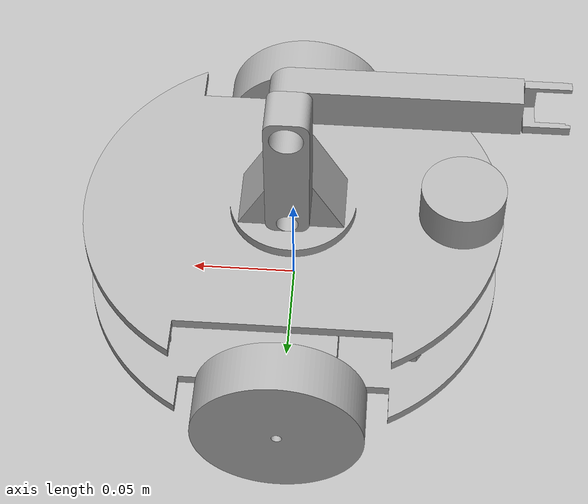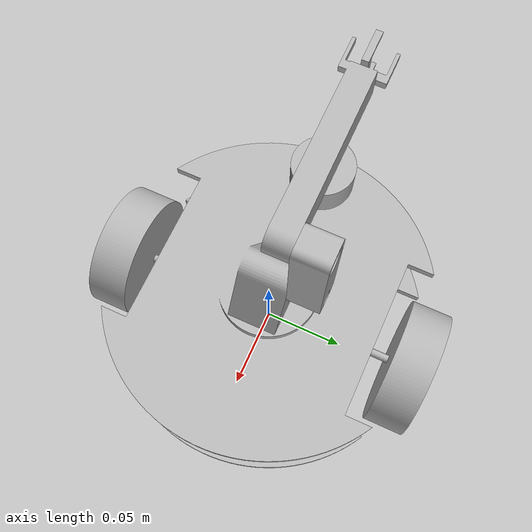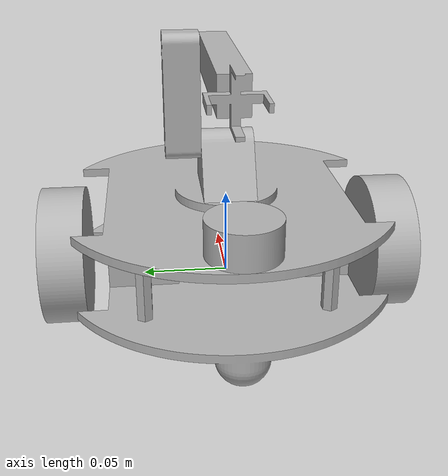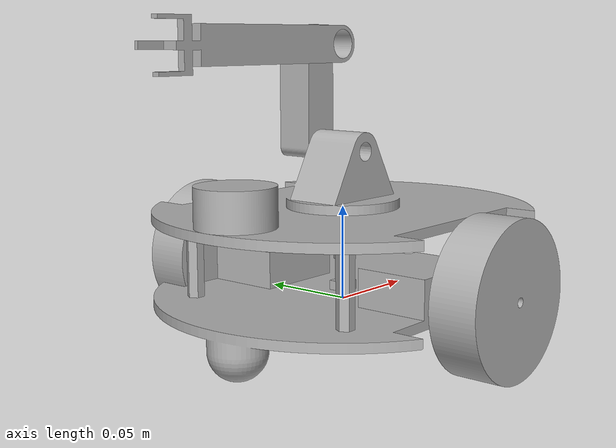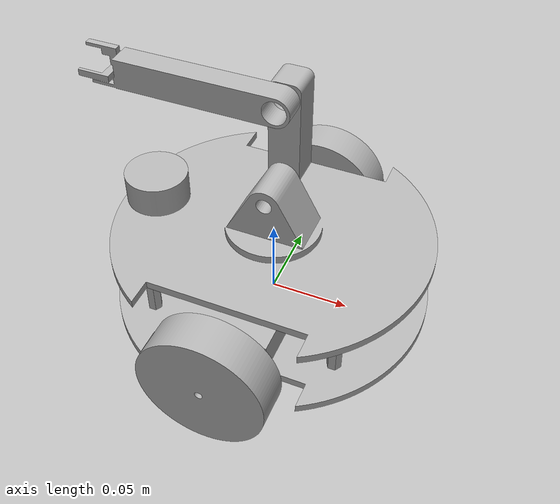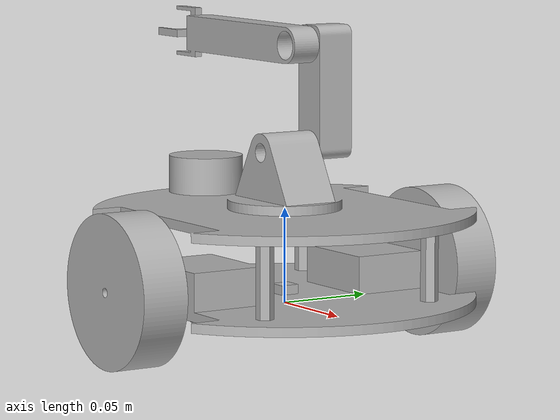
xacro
<?xml version="1.0" ?>
<robot name="robot_ros" xmlns:xacro="http://www.ros.org/wiki/xacro">

<xacro:include filename="$(find robot_ros_description)/urdf/materials.xacro" />
<xacro:include filename="$(find robot_ros_description)/urdf/robot_ros.gazebo" />

<link name="base_footprint"/>
<joint name="base_footprint_joint" type="fixed">
  <origin xyz="0 0 0" rpy="1.570796 0 -1.570796"/>
  <parent link="base_footprint"/>
  <child link="base_link"/>
</joint>

<link name="front_caster">
  <collision>
    <origin xyz="0 0.015 -0.08" rpy="0 0 0"/>
    <geometry>
      <sphere radius="0.015"/>
    </geometry>
  </collision>
  <inertial>
    <mass value="0.01"/>
    <inertia ixx="1e-6" iyy="1e-6" izz="1e-6" ixy="0" ixz="0" iyz="0"/>
  </inertial>
</link>
<joint name="front_caster_joint" type="fixed">
  <parent link="base_link"/>
  <child link="front_caster"/>
  <origin xyz="0 0 0" rpy="0 0 0"/>
</joint>

<link name="back_caster">
  <collision>
    <origin xyz="0 0.015 0.08" rpy="0 0 0"/>
    <geometry>
      <sphere radius="0.015"/>
    </geometry>
  </collision>
  <inertial>
    <mass value="0.01"/>
    <inertia ixx="1e-6" iyy="1e-6" izz="1e-6" ixy="0" ixz="0" iyz="0"/>
  </inertial>
</link>
<joint name="back_caster_joint" type="fixed">
  <parent link="base_link"/>
  <child link="back_caster"/>
  <origin xyz="0 0 0" rpy="0 0 0"/>
</joint>

<link name="base_link">
  <inertial>
    <origin xyz="1.222897793824503e-13 0.006168883797667544 0.00499243549811198" rpy="0 0 0"/>
    <mass value="0.26912643069609726"/>
    <inertia ixx="0.000584" iyy="0.001079" izz="0.000531" ixy="0.0" iyz="2.2e-05" ixz="-0.0"/>
  </inertial>
  <visual>
    <origin xyz="0 0 0" rpy="0 0 0"/>
    <geometry>
      <mesh filename="package://robot_ros_description/meshes/base_link.stl" scale="0.001 0.001 0.001"/>
    </geometry>
    <material name="silver"/>
  </visual>
  <collision>
    <origin xyz="0 0 0" rpy="0 0 0"/>
    <geometry>
      <mesh filename="package://robot_ros_description/meshes/base_link.stl" scale="0.001 0.001 0.001"/>
    </geometry>
  </collision>
</link>

<link name="stanoff__2__1">
  <inertial>
    <origin xyz="-0.05 0.019999999999999976 0.059999999999999984" rpy="0 0 0"/>
    <mass value="0.018822542536012524"/>
    <inertia ixx="3e-06" iyy="0.0" izz="3e-06" ixy="0.0" iyz="0.0" ixz="0.0"/>
  </inertial>
  <visual>
    <origin xyz="-0.0 -0.005 -0.0" rpy="0 0 0"/>
    <geometry>
      <mesh filename="package://robot_ros_description/meshes/stanoff__2__1.stl" scale="0.001 0.001 0.001"/>
    </geometry>
    <material name="silver"/>
  </visual>
  <collision>
    <origin xyz="-0.0 -0.005 -0.0" rpy="0 0 0"/>
    <geometry>
      <mesh filename="package://robot_ros_description/meshes/stanoff__2__1.stl" scale="0.001 0.001 0.001"/>
    </geometry>
  </collision>
</link>

<link name="stanoff__1___1__1">
  <inertial>
    <origin xyz="0.049999999999999885 0.01999999999999997 0.05999999999999989" rpy="0 0 0"/>
    <mass value="0.018822542536012527"/>
    <inertia ixx="3e-06" iyy="0.0" izz="3e-06" ixy="0.0" iyz="-0.0" ixz="-0.0"/>
  </inertial>
  <visual>
    <origin xyz="-0.0 -0.005 -0.0" rpy="0 0 0"/>
    <geometry>
      <mesh filename="package://robot_ros_description/meshes/stanoff__1___1__1.stl" scale="0.001 0.001 0.001"/>
    </geometry>
    <material name="silver"/>
  </visual>
  <collision>
    <origin xyz="-0.0 -0.005 -0.0" rpy="0 0 0"/>
    <geometry>
      <mesh filename="package://robot_ros_description/meshes/stanoff__1___1__1.stl" scale="0.001 0.001 0.001"/>
    </geometry>
  </collision>
</link>

<link name="stanoff__1__1">
  <inertial>
    <origin xyz="0.04999999999999991 0.019999999999999973 -0.0599999999999999" rpy="0 0 0"/>
    <mass value="0.018822542536012527"/>
    <inertia ixx="3e-06" iyy="0.0" izz="3e-06" ixy="0.0" iyz="0.0" ixz="-0.0"/>
  </inertial>
  <visual>
    <origin xyz="-0.0 -0.005 -0.0" rpy="0 0 0"/>
    <geometry>
      <mesh filename="package://robot_ros_description/meshes/stanoff__1__1.stl" scale="0.001 0.001 0.001"/>
    </geometry>
    <material name="silver"/>
  </visual>
  <collision>
    <origin xyz="-0.0 -0.005 -0.0" rpy="0 0 0"/>
    <geometry>
      <mesh filename="package://robot_ros_description/meshes/stanoff__1__1.stl" scale="0.001 0.001 0.001"/>
    </geometry>
  </collision>
</link>

<link name="stanoff_1">
  <inertial>
    <origin xyz="-0.050000000000000024 0.01999999999999999 -0.05999999999999999" rpy="0 0 0"/>
    <mass value="0.018822542536012524"/>
    <inertia ixx="3e-06" iyy="0.0" izz="3e-06" ixy="-0.0" iyz="0.0" ixz="0.0"/>
  </inertial>
  <visual>
    <origin xyz="-0.0 -0.005 -0.0" rpy="0 0 0"/>
    <geometry>
      <mesh filename="package://robot_ros_description/meshes/stanoff_1.stl" scale="0.001 0.001 0.001"/>
    </geometry>
    <material name="silver"/>
  </visual>
  <collision>
    <origin xyz="-0.0 -0.005 -0.0" rpy="0 0 0"/>
    <geometry>
      <mesh filename="package://robot_ros_description/meshes/stanoff_1.stl" scale="0.001 0.001 0.001"/>
    </geometry>
  </collision>
</link>

<link name="imu_1">
  <inertial>
    <origin xyz="4.0731306703083454e-17 0.002500000000000023 3.885780478654568e-18" rpy="0 0 0"/>
    <mass value="0.003925000058487058"/>
    <inertia ixx="0.0" iyy="0.0" izz="0.0" ixy="0.0" iyz="0.0" ixz="0.0"/>
  </inertial>
  <visual>
    <origin xyz="-0.0 -0.005 -0.0" rpy="0 0 0"/>
    <geometry>
      <mesh filename="package://robot_ros_description/meshes/imu_1.stl" scale="0.001 0.001 0.001"/>
    </geometry>
    <material name="silver"/>
  </visual>
  <collision>
    <origin xyz="-0.0 -0.005 -0.0" rpy="0 0 0"/>
    <geometry>
      <mesh filename="package://robot_ros_description/meshes/imu_1.stl" scale="0.001 0.001 0.001"/>
    </geometry>
  </collision>
</link>

<link name="top_plate_1">
  <inertial>
    <origin xyz="-0.049999999999746435 0.0063505967675932945 -0.055000000000006266" rpy="0 0 0"/>
    <mass value="0.20830322680546173"/>
    <inertia ixx="0.000468" iyy="0.000713" izz="0.000276" ixy="0.0" iyz="0.0" ixz="0.0"/>
  </inertial>
  <visual>
    <origin xyz="-0.05 -0.045 -0.055" rpy="0 0 0"/>
    <geometry>
      <mesh filename="package://robot_ros_description/meshes/top_plate_1.stl" scale="0.001 0.001 0.001"/>
    </geometry>
    <material name="silver"/>
  </visual>
  <collision>
    <origin xyz="-0.05 -0.045 -0.055" rpy="0 0 0"/>
    <geometry>
      <mesh filename="package://robot_ros_description/meshes/top_plate_1.stl" scale="0.001 0.001 0.001"/>
    </geometry>
  </collision>
</link>

<link name="wheel_1">
  <inertial>
    <origin xyz="0.012500000000000053 6.938893903907228e-18 1.017332399410385e-15" rpy="0 0 0"/>
    <mass value="0.11641073403106551"/>
    <inertia ixx="9.3e-05" iyy="5.3e-05" izz="5.3e-05" ixy="-0.0" iyz="-0.0" ixz="-0.0"/>
  </inertial>
  <visual>
    <origin xyz="-0.0825 -0.015 -0.0" rpy="0 0 0"/>
    <geometry>
      <mesh filename="package://robot_ros_description/meshes/wheel_1.stl" scale="0.001 0.001 0.001"/>
    </geometry>
    <material name="silver"/>
  </visual>
  <collision>
    <origin xyz="-0.0825 -0.015 -0.0" rpy="0 0 0"/>
    <geometry>
      <mesh filename="package://robot_ros_description/meshes/wheel_1.stl" scale="0.001 0.001 0.001"/>
    </geometry>
  </collision>
</link>

<link name="wheel_2">
  <inertial>
    <origin xyz="-0.012499999999999942 7.37257477290143e-16 9.942651306563859e-16" rpy="0 0 0"/>
    <mass value="0.11641073403106551"/>
    <inertia ixx="9.3e-05" iyy="5.3e-05" izz="5.3e-05" ixy="-0.0" iyz="-0.0" ixz="-0.0"/>
  </inertial>
  <visual>
    <origin xyz="0.0825 -0.015 -0.0" rpy="0 0 0"/>
    <geometry>
      <mesh filename="package://robot_ros_description/meshes/wheel_2.stl" scale="0.001 0.001 0.001"/>
    </geometry>
    <material name="silver"/>
  </visual>
  <collision>
    <origin xyz="0.0825 -0.015 -0.0" rpy="0 0 0"/>
    <geometry>
      <mesh filename="package://robot_ros_description/meshes/wheel_2.stl" scale="0.001 0.001 0.001"/>
    </geometry>
  </collision>
</link>

<link name="lidar_1">
  <inertial>
    <origin xyz="-1.358175429145496e-17 0.009999999999999926 0.08" rpy="0 0 0"/>
    <mass value="0.197292018645439"/>
    <inertia ixx="2.6e-05" iyy="3.9e-05" izz="2.6e-05" ixy="0.0" iyz="-0.0" ixz="-0.0"/>
  </inertial>
  <visual>
    <origin xyz="0.0 -0.05 -0.0" rpy="0 0 0"/>
    <geometry>
      <mesh filename="package://robot_ros_description/meshes/lidar_1.stl" scale="0.001 0.001 0.001"/>
    </geometry>
    <material name="silver"/>
  </visual>
  <collision>
    <origin xyz="0.0 -0.05 -0.0" rpy="0 0 0"/>
    <geometry>
      <mesh filename="package://robot_ros_description/meshes/lidar_1.stl" scale="0.001 0.001 0.001"/>
    </geometry>
  </collision>
</link>

<link name="link_arm_1_1">
  <inertial>
    <origin xyz="-0.010000000000000123 0.028162063620211078 -0.00037849755266013656" rpy="0 0 0"/>
    <mass value="0.1"/>
    <inertia ixx="0.001" iyy="0.001" izz="0.001" ixy="0.0" iyz="0.0" ixz="0.0"/>
  </inertial>
  <visual>
    <origin xyz="0.015 -0.08 -0.0" rpy="0 0 0"/>
    <geometry>
      <mesh filename="package://robot_ros_description/meshes/link_arm_1_1.stl" scale="0.001 0.001 0.001"/>
    </geometry>
    <material name="silver"/>
  </visual>
  <collision>
    <origin xyz="0.015 -0.08 -0.0" rpy="0 0 0"/>
    <geometry>
      <mesh filename="package://robot_ros_description/meshes/link_arm_1_1.stl" scale="0.001 0.001 0.001"/>
    </geometry>
  </collision>
</link>

<link name="link_arm_2_1">
  <inertial>
    <origin xyz="0.007499999999999892 0.021326500168701412 0.04895600422661237" rpy="0 0 0"/>
    <mass value="0.1"/>
    <inertia ixx="0.001" iyy="0.001" izz="0.001" ixy="0.0" iyz="0.0" ixz="0.0"/>
  </inertial>
  <visual>
    <origin xyz="0.015 -0.134995 0.000739" rpy="0 0 0"/>
    <geometry>
      <mesh filename="package://robot_ros_description/meshes/link_arm_2_1.stl" scale="0.001 0.001 0.001"/>
    </geometry>
    <material name="silver"/>
  </visual>
  <collision>
    <origin xyz="0.015 -0.134995 0.000739" rpy="0 0 0"/>
    <geometry>
      <mesh filename="package://robot_ros_description/meshes/link_arm_2_1.stl" scale="0.001 0.001 0.001"/>
    </geometry>
  </collision>
</link>

<joint name="Rigid 1" type="fixed">
  <origin xyz="0.0 0.005 0.0" rpy="0 0 0"/>
  <parent link="base_link"/>
  <child link="stanoff__2__1"/>
</joint>

<joint name="Rigid 2" type="fixed">
  <origin xyz="0.0 0.005 0.0" rpy="0 0 0"/>
  <parent link="base_link"/>
  <child link="stanoff__1___1__1"/>
</joint>

<joint name="Rigid 3" type="fixed">
  <origin xyz="0.0 0.005 0.0" rpy="0 0 0"/>
  <parent link="base_link"/>
  <child link="stanoff__1__1"/>
</joint>

<joint name="Rigid 4" type="fixed">
  <origin xyz="0.0 0.005 0.0" rpy="0 0 0"/>
  <parent link="base_link"/>
  <child link="stanoff_1"/>
</joint>

<joint name="Rigid 5" type="fixed">
  <origin xyz="0.0 0.005 0.0" rpy="0 0 0"/>
  <parent link="base_link"/>
  <child link="imu_1"/>
</joint>

<joint name="Rigid 6" type="fixed">
  <origin xyz="0.05 0.04 0.055" rpy="0 0 0"/>
  <parent link="stanoff__1___1__1"/>
  <child link="top_plate_1"/>
</joint>

<joint name="Revolute 7" type="continuous">
  <origin xyz="0.0825 0.015 0.0" rpy="0 0 0"/>
  <parent link="base_link"/>
  <child link="wheel_1"/>
  <axis xyz="-1.0 0.0 0.0"/>
</joint>

<joint name="Revolute 8" type="continuous">
  <origin xyz="-0.0825 0.015 0.0" rpy="0 0 0"/>
  <parent link="base_link"/>
  <child link="wheel_2"/>
  <axis xyz="-1.0 0.0 0.0"/>
</joint>

<joint name="Rigid 9" type="fixed">
  <origin xyz="-0.05 0.005 -0.055" rpy="0 0 0"/>
  <parent link="top_plate_1"/>
  <child link="lidar_1"/>
</joint>

<joint name="Revolute 10" type="revolute">
  <origin xyz="-0.065 0.035 -0.055" rpy="0 0 0"/>
  <parent link="top_plate_1"/>
  <child link="link_arm_1_1"/>
  <axis xyz="1.0 0.0 0.0"/>
  <limit upper="1.570796" lower="-1.570796" effort="100" velocity="100"/>
  <dynamics damping="1.0" friction="0.5"/>
</joint>

<joint name="Revolute 11" type="revolute">
  <origin xyz="0.0 0.054995 -0.000739" rpy="0 0 0"/>
  <parent link="link_arm_1_1"/>
  <child link="link_arm_2_1"/>
  <axis xyz="-1.0 -0.0 0.0"/>
  <limit upper="3.141593" lower="0.0" effort="100" velocity="100"/>
  <dynamics damping="1.0" friction="0.5"/>
</joint>

<link name="lidar_frame"/>
<joint name="lidar_frame_joint" type="fixed">
  <origin xyz="0 0 0" rpy="-1.570796 1.570796 0"/>
  <parent link="lidar_1"/>
  <child link="lidar_frame"/>
</joint>

<link name="imu_frame"/>
<joint name="imu_frame_joint" type="fixed">
  <origin xyz="0 0 0" rpy="-1.570796 1.570796 0"/>
  <parent link="imu_1"/>
  <child link="imu_frame"/>
</joint>

</robot>

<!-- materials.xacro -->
<robot name="robot_ros" xmlns:xacro="http://www.ros.org/wiki/xacro" >

<material name="silver">
  <color rgba="0.700 0.700 0.700 1.000"/>
</material>

</robot>

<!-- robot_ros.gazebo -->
<robot name="robot_ros" xmlns:xacro="http://www.ros.org/wiki/xacro" >

<xacro:property name="body_color" value="Gazebo/Silver" />

<gazebo>
  <plugin name="diff_drive" filename="libgazebo_ros_diff_drive.so">
    <update_rate>30</update_rate>
    <left_joint>Revolute 8</left_joint>
    <right_joint>Revolute 7</right_joint>
    <wheel_separation>0.165</wheel_separation>
    <wheel_diameter>0.03</wheel_diameter>
    <max_wheel_torque>20</max_wheel_torque>
    <max_wheel_acceleration>1.0</max_wheel_acceleration>
    <command_topic>cmd_vel</command_topic>
    <publish_odom>true</publish_odom>
    <publish_odom_tf>true</publish_odom_tf>
    <publish_wheel_tf>false</publish_wheel_tf>
    <odometry_topic>odom</odometry_topic>
    <odometry_frame>odom</odometry_frame>
    <robot_base_frame>base_footprint</robot_base_frame>
  </plugin>

  <plugin name="joint_state" filename="libgazebo_ros_joint_state_publisher.so">
    <ros>
      <remapping>~/out:=joint_states</remapping>
    </ros>
    <update_rate>30</update_rate>
    <joint_name>Revolute 7</joint_name>
    <joint_name>Revolute 8</joint_name>
    <joint_name>Revolute 10</joint_name>
    <joint_name>Revolute 11</joint_name>
  </plugin>

  <plugin name="arm_controller" filename="libgazebo_ros_joint_pose_trajectory.so">
    <ros>
      <remapping>set_joint_trajectory:=set_joint_trajectory</remapping>
    </ros>
    <update_rate>30</update_rate>
    <reference_link>base_link</reference_link>
    <joint_name>Revolute 10</joint_name>
    <joint_name>Revolute 11</joint_name>
  </plugin>
</gazebo>

<gazebo reference="base_link">
  <material>${body_color}</material>
  <mu1>0.2</mu1>
  <mu2>0.2</mu2>
  <selfCollide>true</selfCollide>
  <gravity>true</gravity>
</gazebo>

<gazebo reference="front_caster">
  <mu1>0.0</mu1>
  <mu2>0.0</mu2>
</gazebo>

<gazebo reference="back_caster">
  <mu1>0.0</mu1>
  <mu2>0.0</mu2>
</gazebo>

<gazebo reference="wheel_1">
  <material>${body_color}</material>
  <mu1>1000.0</mu1>
  <mu2>1000.0</mu2>
  <selfCollide>true</selfCollide>
</gazebo>

<gazebo reference="wheel_2">
  <material>${body_color}</material>
  <mu1>1000.0</mu1>
  <mu2>1000.0</mu2>
  <selfCollide>true</selfCollide>
</gazebo>

<gazebo reference="lidar_frame">
  <sensor type="ray" name="lidar">
    <pose>0 0 0 0 0 0</pose>
    <visualize>true</visualize>
    <update_rate>10</update_rate>
    <ray>
      <scan>
        <horizontal>
          <samples>360</samples>
          <resolution>1</resolution>
          <min_angle>-3.14159</min_angle>
          <max_angle>3.14159</max_angle>
        </horizontal>
      </scan>
      <range>
        <min>0.15</min>
        <max>8.0</max>
        <resolution>0.01</resolution>
      </range>
    </ray>
    <plugin name="scan" filename="libgazebo_ros_ray_sensor.so">
      <ros>
        <remapping>~/out:=scan</remapping>
      </ros>
      <output_type>sensor_msgs/LaserScan</output_type>
      <frame_name>lidar_frame</frame_name>
    </plugin>
  </sensor>
</gazebo>

<gazebo reference="lidar_1">
  <material>${body_color}</material>
</gazebo>

<gazebo reference="imu_frame">
  <sensor name="imu_sensor" type="imu">
    <plugin filename="libgazebo_ros_imu_sensor.so" name="imu_plugin">
      <ros>
        <remapping>~/out:=imu</remapping>
      </ros>
      <initial_orientation_as_reference>false</initial_orientation_as_reference>
    </plugin>
    <always_on>true</always_on>
    <update_rate>100</update_rate>
    <visualize>true</visualize>
  </sensor>
</gazebo>

<gazebo reference="imu_1">
  <material>${body_color}</material>
</gazebo>

<gazebo reference="link_arm_1_1">
  <material>${body_color}</material>
  <mu1>0.2</mu1>
  <mu2>0.2</mu2>
  <selfCollide>true</selfCollide>
</gazebo>

<gazebo reference="link_arm_2_1">
  <material>${body_color}</material>
  <mu1>0.2</mu1>
  <mu2>0.2</mu2>
  <selfCollide>true</selfCollide>
</gazebo>

</robot>
